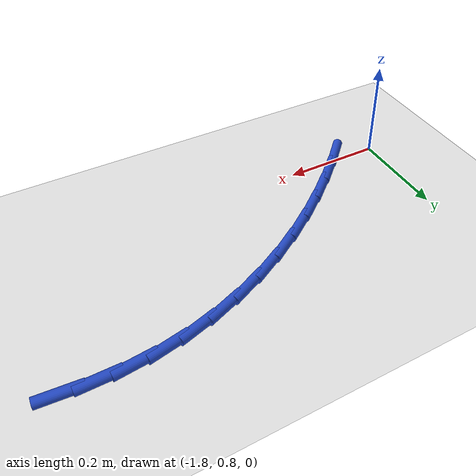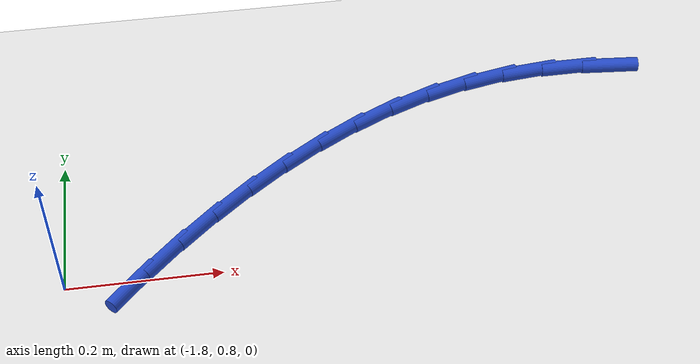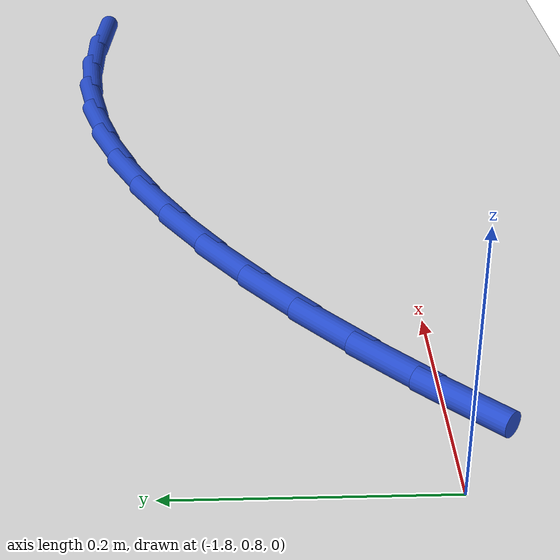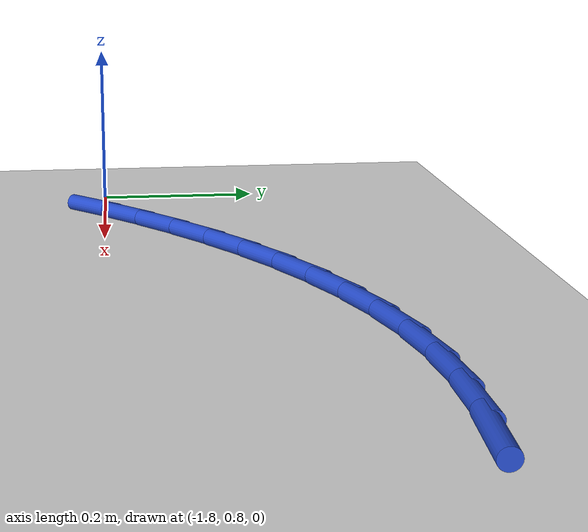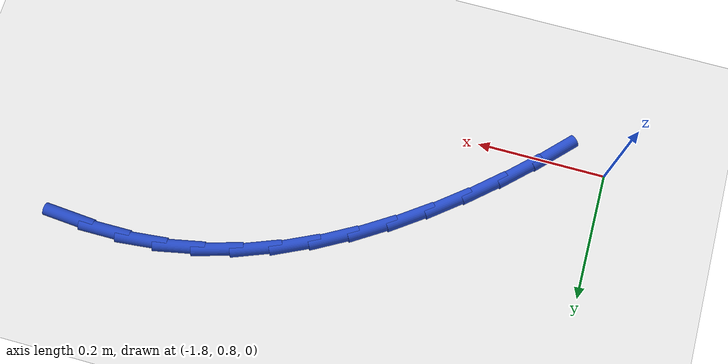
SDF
<sdf version="1.6">
 <world name="default">
  <model name="ground_plane">
   <static>1</static>
   <link name="link">
    <collision name="collision">
     <geometry><plane><normal>0 0 1</normal><size>100 100</size></plane></geometry>
     <surface><friction><ode><mu>100</mu><mu2>50</mu2></ode></friction></surface>
    </collision>
    <visual name="visual">
     <cast_shadows>0</cast_shadows>
     <geometry><plane><normal>0 0 1</normal><size>100 100</size></plane></geometry>
     <material>
      <script><uri>file://media/materials/scripts/gazebo.material</uri><name>Gazebo/WhiteGlow</name></script>
     </material>
    </visual>
   </link>
  </model>
  <model name="line">
   <link name="link_27">
    <pose>-1.0271785228825823 1.0857214561150867 0.01 0 1.57 -0.08069021635554334</pose>
    <collision name="collision">
     <geometry><cylinder><radius>0.01</radius><length>0.08</length></cylinder></geometry>
    </collision>
    <visual name="visual">
     <material>
      <script><name>Gazebo/Blue</name><uri>file://media/materials/scripts/gazebo.material</uri></script>
     </material>
     <geometry><cylinder><radius>0.01</radius><length>0.08</length></cylinder></geometry>
    </visual>
   </link>
   <link name="link_28">
    <pose>-1.0858034731449795 1.090462209378575 0.01 0 1.57 0.0041620736702114</pose>
    <collision name="collision">
     <geometry><cylinder><radius>0.01</radius><length>0.08</length></cylinder></geometry>
    </collision>
    <visual name="visual">
     <material>
      <script><name>Gazebo/Blue</name><uri>file://media/materials/scripts/gazebo.material</uri></script>
     </material>
     <geometry><cylinder><radius>0.01</radius><length>0.08</length></cylinder></geometry>
    </visual>
   </link>
   <link name="link_29">
    <pose>-1.1440871580510452 1.0902196269874829 0.01 0 1.57 0.09773151526977575</pose>
    <collision name="collision">
     <geometry><cylinder><radius>0.01</radius><length>0.08</length></cylinder></geometry>
    </collision>
    <visual name="visual">
     <material>
      <script><name>Gazebo/Blue</name><uri>file://media/materials/scripts/gazebo.material</uri></script>
     </material>
     <geometry><cylinder><radius>0.01</radius><length>0.08</length></cylinder></geometry>
    </visual>
   </link>
   <link name="link_30">
    <pose>-1.2018128912743653 1.0845599728255264 0.01 0 1.57 0.19605587101584016</pose>
    <collision name="collision">
     <geometry><cylinder><radius>0.01</radius><length>0.08</length></cylinder></geometry>
    </collision>
    <visual name="visual">
     <material>
      <script><name>Gazebo/Blue</name><uri>file://media/materials/scripts/gazebo.material</uri></script>
     </material>
     <geometry><cylinder><radius>0.01</radius><length>0.08</length></cylinder></geometry>
    </visual>
   </link>
   <link name="link_31">
    <pose>-1.2587816856951188 1.0732455660035194 0.01 0 1.57 0.2882027809399187</pose>
    <collision name="collision">
     <geometry><cylinder><radius>0.01</radius><length>0.08</length></cylinder></geometry>
    </collision>
    <visual name="visual">
     <material>
      <script><name>Gazebo/Blue</name><uri>file://media/materials/scripts/gazebo.material</uri></script>
     </material>
     <geometry><cylinder><radius>0.01</radius><length>0.08</length></cylinder></geometry>
    </visual>
   </link>
   <link name="link_32">
    <pose>-1.314847436451376 1.056624505736351 0.01 0 1.57 0.3720197526886223</pose>
    <collision name="collision">
     <geometry><cylinder><radius>0.01</radius><length>0.08</length></cylinder></geometry>
    </collision>
    <visual name="visual">
     <material>
      <script><name>Gazebo/Blue</name><uri>file://media/materials/scripts/gazebo.material</uri></script>
     </material>
     <geometry><cylinder><radius>0.01</radius><length>0.08</length></cylinder></geometry>
    </visual>
   </link>
   <link name="link_33">
    <pose>-1.3698738722705306 1.0351538185277025 0.01 0 1.57 0.4477445248068945</pose>
    <collision name="collision">
     <geometry><cylinder><radius>0.01</radius><length>0.08</length></cylinder></geometry>
    </collision>
    <visual name="visual">
     <material>
      <script><name>Gazebo/Blue</name><uri>file://media/materials/scripts/gazebo.material</uri></script>
     </material>
     <geometry><cylinder><radius>0.01</radius><length>0.08</length></cylinder></geometry>
    </visual>
   </link>
   <link name="link_34">
    <pose>-1.4237247218799762 1.009290530881254 0.01 0 1.57 0.5159345463175643</pose>
    <collision name="collision">
     <geometry><cylinder><radius>0.01</radius><length>0.08</length></cylinder></geometry>
    </collision>
    <visual name="visual">
     <material>
      <script><name>Gazebo/Blue</name><uri>file://media/materials/scripts/gazebo.material</uri></script>
     </material>
     <geometry><cylinder><radius>0.01</radius><length>0.08</length></cylinder></geometry>
    </visual>
   </link>
   <link name="link_35">
    <pose>-1.4762637140071055 0.9794916693006862 0.01 0 1.57 0.577315081573525</pose>
    <collision name="collision">
     <geometry><cylinder><radius>0.01</radius><length>0.08</length></cylinder></geometry>
    </collision>
    <visual name="visual">
     <material>
      <script><name>Gazebo/Blue</name><uri>file://media/materials/scripts/gazebo.material</uri></script>
     </material>
     <geometry><cylinder><radius>0.01</radius><length>0.08</length></cylinder></geometry>
    </visual>
   </link>
   <link name="link_36">
    <pose>-1.527354577379313 0.9462142602896791 0.01 0 1.57 0.6326725158359722</pose>
    <collision name="collision">
     <geometry><cylinder><radius>0.01</radius><length>0.08</length></cylinder></geometry>
    </collision>
    <visual name="visual">
     <material>
      <script><name>Gazebo/Blue</name><uri>file://media/materials/scripts/gazebo.material</uri></script>
     </material>
     <geometry><cylinder><radius>0.01</radius><length>0.08</length></cylinder></geometry>
    </visual>
   </link>
   <link name="link_37">
    <pose>-1.5768610407239911 0.9099153303519135 0.01 0 1.57 0.682788672119065</pose>
    <collision name="collision">
     <geometry><cylinder><radius>0.01</radius><length>0.08</length></cylinder></geometry>
    </collision>
    <visual name="visual">
     <material>
      <script><name>Gazebo/Blue</name><uri>file://media/materials/scripts/gazebo.material</uri></script>
     </material>
     <geometry><cylinder><radius>0.01</radius><length>0.08</length></cylinder></geometry>
    </visual>
   </link>
   <link name="link_38">
    <pose>-1.624646832768534 0.8710519059910697 0.01 0 1.57 0.7284061865192047</pose>
    <collision name="collision">
     <geometry><cylinder><radius>0.01</radius><length>0.08</length></cylinder></geometry>
    </collision>
    <visual name="visual">
     <material>
      <script><name>Gazebo/Blue</name><uri>file://media/materials/scripts/gazebo.material</uri></script>
     </material>
     <geometry><cylinder><radius>0.01</radius><length>0.08</length></cylinder></geometry>
    </visual>
   </link>
   <link name="link_39">
    <pose>-1.6705756822403348 0.830081013710828 0.01 0 1.57 0.7702346514270159</pose>
    <collision name="collision">
     <geometry><cylinder><radius>0.01</radius><length>0.08</length></cylinder></geometry>
    </collision>
    <visual name="visual">
     <material>
      <script><name>Gazebo/Blue</name><uri>file://media/materials/scripts/gazebo.material</uri></script>
     </material>
     <geometry><cylinder><radius>0.01</radius><length>0.08</length></cylinder></geometry>
    </visual>
   </link>
   <link name="link_40">
    <pose>-1.714511582917287 0.787457754498681 0.01 0 1.57 0.8104875572717865</pose>
    <collision name="collision">
     <geometry><cylinder><radius>0.01</radius><length>0.08</length></cylinder></geometry>
    </collision>
    <visual name="visual">
     <material>
      <script><name>Gazebo/Blue</name><uri>file://media/materials/scripts/gazebo.material</uri></script>
     </material>
     <geometry><cylinder><radius>0.01</radius><length>0.08</length></cylinder></geometry>
    </visual>
   </link>
  </model>
 </world>
</sdf>
